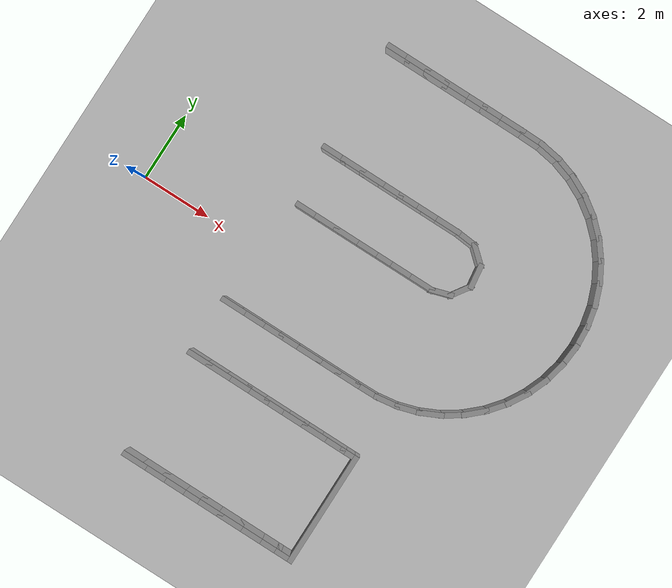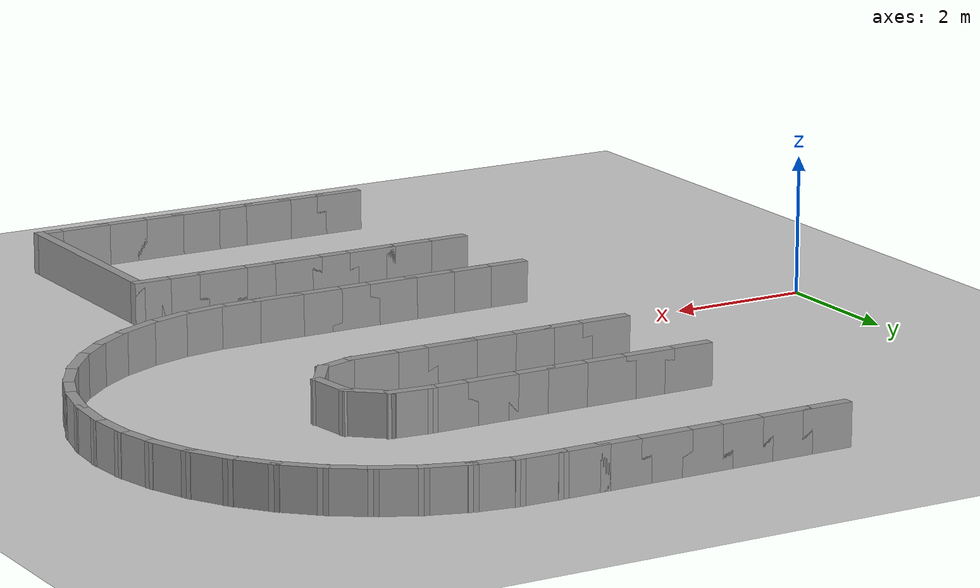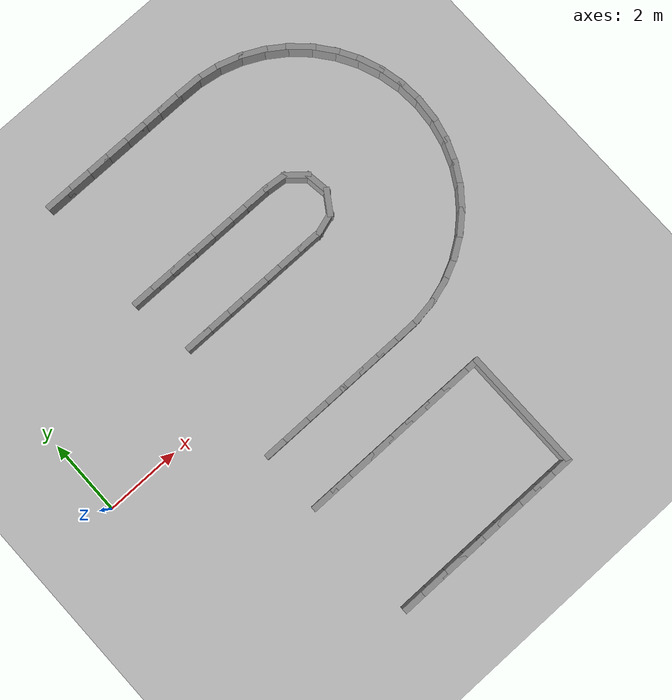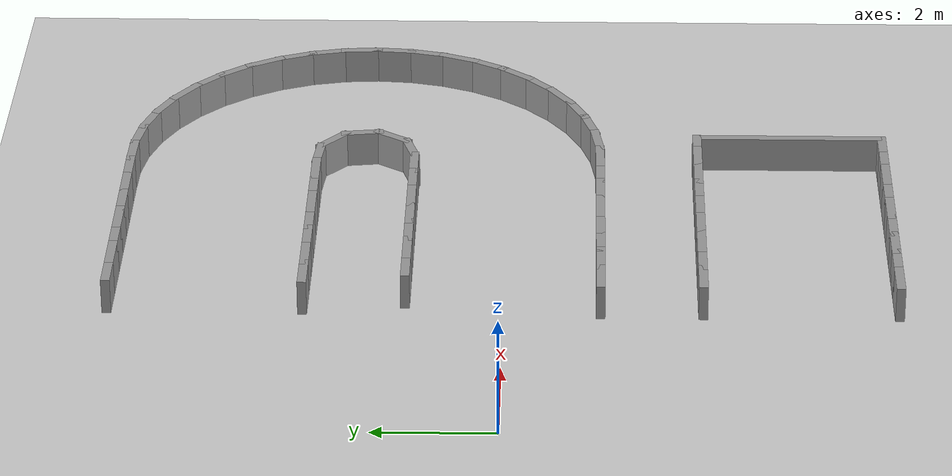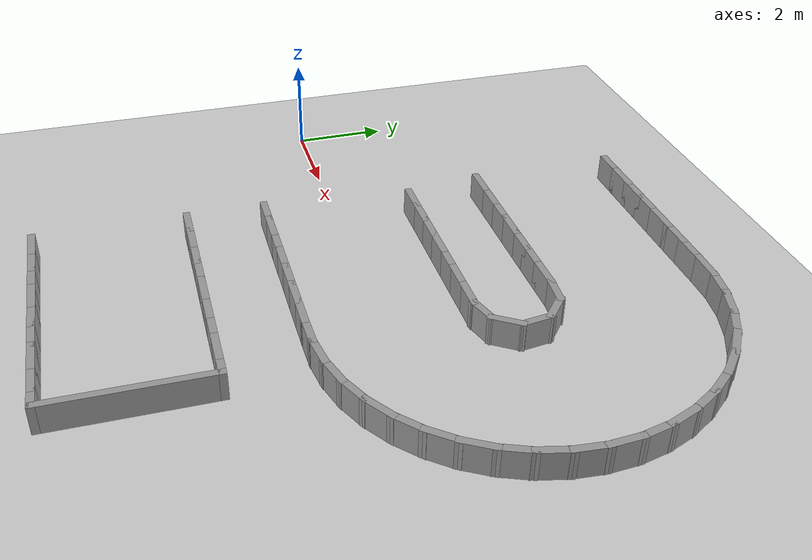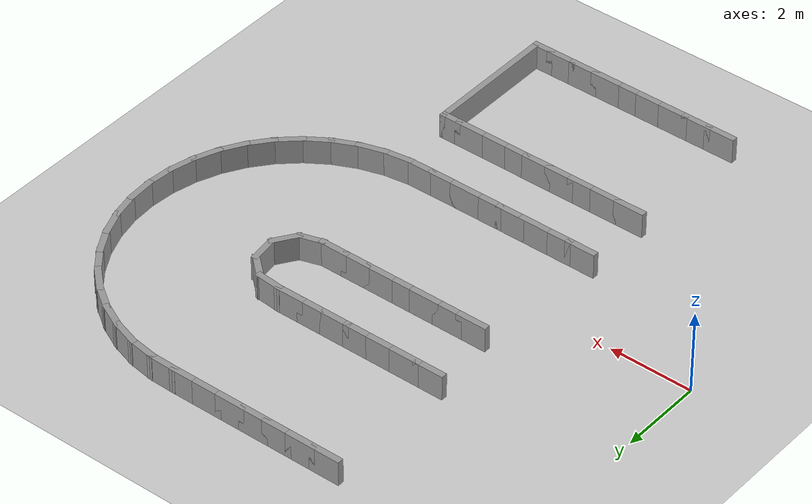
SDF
<sdf version="1.7">
 <world name="default">
  <model name="ground_plane">
   <static>1</static>
   <link name="link">
    <collision name="collision">
     <geometry><plane><normal>0 0 1</normal><size>100 100</size></plane></geometry>
     <surface><friction><ode><mu>100</mu><mu2>50</mu2></ode></friction></surface>
    </collision>
    <visual name="visual">
     <cast_shadows>0</cast_shadows>
     <geometry><plane><normal>0 0 1</normal><size>100 100</size></plane></geometry>
     <material>
      <script><uri>file://media/materials/scripts/gazebo.material</uri><name>Gazebo/Grey</name></script>
     </material>
    </visual>
   </link>
  </model>
  <model name="rand_serp_01">
   <link name="Wall_21">
    <collision name="Wall_21_Collision">
     <geometry><box><size>0.7500 0.1500 0.6000</size></box></geometry>
     <pose>0 0 0.3000 0 -0 0</pose>
    </collision>
    <visual name="Wall_21_Visual">
     <pose>0 0 0.3000 0 -0 0</pose>
     <geometry><box><size>0.7500 0.1500 0.6000</size></box></geometry>
     <material>
      <script><uri>file://media/materials/scripts/gazebo.material</uri><name>Gazebo/Grey</name></script>
      <ambient>1 1 1 1</ambient>
     </material>
    </visual>
    <pose>4.0214 6.4421 0 0 -0 0.00000</pose>
   </link>
   <link name="Wall_22">
    <collision name="Wall_22_Collision">
     <geometry><box><size>0.7500 0.1500 0.6000</size></box></geometry>
     <pose>0 0 0.3000 0 -0 0</pose>
    </collision>
    <visual name="Wall_22_Visual">
     <pose>0 0 0.3000 0 -0 0</pose>
     <geometry><box><size>0.7500 0.1500 0.6000</size></box></geometry>
     <material>
      <script><uri>file://media/materials/scripts/gazebo.material</uri><name>Gazebo/Grey</name></script>
      <ambient>1 1 1 1</ambient>
     </material>
    </visual>
    <pose>4.6214 6.4421 0 0 -0 0.00000</pose>
   </link>
   <link name="Wall_23">
    <collision name="Wall_23_Collision">
     <geometry><box><size>0.7500 0.1500 0.6000</size></box></geometry>
     <pose>0 0 0.3000 0 -0 0</pose>
    </collision>
    <visual name="Wall_23_Visual">
     <pose>0 0 0.3000 0 -0 0</pose>
     <geometry><box><size>0.7500 0.1500 0.6000</size></box></geometry>
     <material>
      <script><uri>file://media/materials/scripts/gazebo.material</uri><name>Gazebo/Grey</name></script>
      <ambient>1 1 1 1</ambient>
     </material>
    </visual>
    <pose>5.2214 6.4421 0 0 -0 0.00000</pose>
   </link>
   <link name="Wall_24">
    <collision name="Wall_24_Collision">
     <geometry><box><size>0.7500 0.1500 0.6000</size></box></geometry>
     <pose>0 0 0.3000 0 -0 0</pose>
    </collision>
    <visual name="Wall_24_Visual">
     <pose>0 0 0.3000 0 -0 0</pose>
     <geometry><box><size>0.7500 0.1500 0.6000</size></box></geometry>
     <material>
      <script><uri>file://media/materials/scripts/gazebo.material</uri><name>Gazebo/Grey</name></script>
      <ambient>1 1 1 1</ambient>
     </material>
    </visual>
    <pose>5.8214 6.4421 0 0 -0 0.00000</pose>
   </link>
   <link name="Wall_25">
    <collision name="Wall_25_Collision">
     <geometry><box><size>0.7500 0.1500 0.6000</size></box></geometry>
     <pose>0 0 0.3000 0 -0 0</pose>
    </collision>
    <visual name="Wall_25_Visual">
     <pose>0 0 0.3000 0 -0 0</pose>
     <geometry><box><size>0.7500 0.1500 0.6000</size></box></geometry>
     <material>
      <script><uri>file://media/materials/scripts/gazebo.material</uri><name>Gazebo/Grey</name></script>
      <ambient>1 1 1 1</ambient>
     </material>
    </visual>
    <pose>6.4214 6.4421 0 0 -0 0.00000</pose>
   </link>
   <link name="Wall_26">
    <collision name="Wall_26_Collision">
     <geometry><box><size>0.7500 0.1500 0.6000</size></box></geometry>
     <pose>0 0 0.3000 0 -0 0</pose>
    </collision>
    <visual name="Wall_26_Visual">
     <pose>0 0 0.3000 0 -0 0</pose>
     <geometry><box><size>0.7500 0.1500 0.6000</size></box></geometry>
     <material>
      <script><uri>file://media/materials/scripts/gazebo.material</uri><name>Gazebo/Grey</name></script>
      <ambient>1 1 1 1</ambient>
     </material>
    </visual>
    <pose>7.0214 6.4421 0 0 -0 0.00000</pose>
   </link>
   <link name="Wall_27">
    <collision name="Wall_27_Collision">
     <geometry><box><size>0.7500 0.1500 0.6000</size></box></geometry>
     <pose>0 0 0.3000 0 -0 0</pose>
    </collision>
    <visual name="Wall_27_Visual">
     <pose>0 0 0.3000 0 -0 0</pose>
     <geometry><box><size>0.7500 0.1500 0.6000</size></box></geometry>
     <material>
      <script><uri>file://media/materials/scripts/gazebo.material</uri><name>Gazebo/Grey</name></script>
      <ambient>1 1 1 1</ambient>
     </material>
    </visual>
    <pose>7.6214 6.4421 0 0 -0 0.00000</pose>
   </link>
   <link name="Wall_28">
    <collision name="Wall_28_Collision">
     <geometry><box><size>0.7498 0.1500 0.6000</size></box></geometry>
     <pose>0 0 0.3000 0 -0 0</pose>
    </collision>
    <visual name="Wall_28_Visual">
     <pose>0 0 0.3000 0 -0 0</pose>
     <geometry><box><size>0.7498 0.1500 0.6000</size></box></geometry>
     <material>
      <script><uri>file://media/materials/scripts/gazebo.material</uri><name>Gazebo/Grey</name></script>
      <ambient>1 1 1 1</ambient>
     </material>
    </visual>
    <pose>8.2212 6.4346 0 0 -0 -0.02504</pose>
   </link>
   <link name="Wall_29">
    <collision name="Wall_29_Collision">
     <geometry><box><size>0.7494 0.1500 0.6000</size></box></geometry>
     <pose>0 0 0.3000 0 -0 0</pose>
    </collision>
    <visual name="Wall_29_Visual">
     <pose>0 0 0.3000 0 -0 0</pose>
     <geometry><box><size>0.7494 0.1500 0.6000</size></box></geometry>
     <material>
      <script><uri>file://media/materials/scripts/gazebo.material</uri><name>Gazebo/Grey</name></script>
      <ambient>1 1 1 1</ambient>
     </material>
    </visual>
    <pose>8.8169 6.3794 0 0 -0 -0.15984</pose>
   </link>
   <link name="Wall_30">
    <collision name="Wall_30_Collision">
     <geometry><box><size>0.7494 0.1500 0.6000</size></box></geometry>
     <pose>0 0 0.3000 0 -0 0</pose>
    </collision>
    <visual name="Wall_30_Visual">
     <pose>0 0 0.3000 0 -0 0</pose>
     <geometry><box><size>0.7494 0.1500 0.6000</size></box></geometry>
     <material>
      <script><uri>file://media/materials/scripts/gazebo.material</uri><name>Gazebo/Grey</name></script>
      <ambient>1 1 1 1</ambient>
     </material>
    </visual>
    <pose>9.3982 6.2402 0 0 -0 -0.31012</pose>
   </link>
   <link name="Wall_31">
    <collision name="Wall_31_Collision">
     <geometry><box><size>0.7494 0.1500 0.6000</size></box></geometry>
     <pose>0 0 0.3000 0 -0 0</pose>
    </collision>
    <visual name="Wall_31_Visual">
     <pose>0 0 0.3000 0 -0 0</pose>
     <geometry><box><size>0.7494 0.1500 0.6000</size></box></geometry>
     <material>
      <script><uri>file://media/materials/scripts/gazebo.material</uri><name>Gazebo/Grey</name></script>
      <ambient>1 1 1 1</ambient>
     </material>
    </visual>
    <pose>9.9523 6.0160 0 0 -0 -0.45886</pose>
   </link>
   <link name="Wall_32">
    <collision name="Wall_32_Collision">
     <geometry><box><size>0.7494 0.1500 0.6000</size></box></geometry>
     <pose>0 0 0.3000 0 -0 0</pose>
    </collision>
    <visual name="Wall_32_Visual">
     <pose>0 0 0.3000 0 -0 0</pose>
     <geometry><box><size>0.7494 0.1500 0.6000</size></box></geometry>
     <material>
      <script><uri>file://media/materials/scripts/gazebo.material</uri><name>Gazebo/Grey</name></script>
      <ambient>1 1 1 1</ambient>
     </material>
    </visual>
    <pose>10.4670 5.7122 0 0 -0 -0.60759</pose>
   </link>
   <link name="Wall_33">
    <collision name="Wall_33_Collision">
     <geometry><box><size>0.7494 0.1500 0.6000</size></box></geometry>
     <pose>0 0 0.3000 0 -0 0</pose>
    </collision>
    <visual name="Wall_33_Visual">
     <pose>0 0 0.3000 0 -0 0</pose>
     <geometry><box><size>0.7494 0.1500 0.6000</size></box></geometry>
     <material>
      <script><uri>file://media/materials/scripts/gazebo.material</uri><name>Gazebo/Grey</name></script>
      <ambient>1 1 1 1</ambient>
     </material>
    </visual>
    <pose>10.9309 5.3353 0 0 -0 -0.75711</pose>
   </link>
   <link name="Wall_34">
    <collision name="Wall_34_Collision">
     <geometry><box><size>0.7494 0.1500 0.6000</size></box></geometry>
     <pose>0 0 0.3000 0 -0 0</pose>
    </collision>
    <visual name="Wall_34_Visual">
     <pose>0 0 0.3000 0 -0 0</pose>
     <geometry><box><size>0.7494 0.1500 0.6000</size></box></geometry>
     <material>
      <script><uri>file://media/materials/scripts/gazebo.material</uri><name>Gazebo/Grey</name></script>
      <ambient>1 1 1 1</ambient>
     </material>
    </visual>
    <pose>11.3333 4.8932 0 0 -0 -0.90764</pose>
   </link>
   <link name="Wall_35">
    <collision name="Wall_35_Collision">
     <geometry><box><size>0.7494 0.1500 0.6000</size></box></geometry>
     <pose>0 0 0.3000 0 -0 0</pose>
    </collision>
    <visual name="Wall_35_Visual">
     <pose>0 0 0.3000 0 -0 0</pose>
     <geometry><box><size>0.7494 0.1500 0.6000</size></box></geometry>
     <material>
      <script><uri>file://media/materials/scripts/gazebo.material</uri><name>Gazebo/Grey</name></script>
      <ambient>1 1 1 1</ambient>
     </material>
    </visual>
    <pose>11.6652 4.3961 0 0 -0 -1.05638</pose>
   </link>
   <link name="Wall_36">
    <collision name="Wall_36_Collision">
     <geometry><box><size>0.7494 0.1500 0.6000</size></box></geometry>
     <pose>0 0 0.3000 0 -0 0</pose>
    </collision>
    <visual name="Wall_36_Visual">
     <pose>0 0 0.3000 0 -0 0</pose>
     <geometry><box><size>0.7494 0.1500 0.6000</size></box></geometry>
     <material>
      <script><uri>file://media/materials/scripts/gazebo.material</uri><name>Gazebo/Grey</name></script>
      <ambient>1 1 1 1</ambient>
     </material>
    </visual>
    <pose>11.9198 3.8554 0 0 -0 -1.20511</pose>
   </link>
   <link name="Wall_37">
    <collision name="Wall_37_Collision">
     <geometry><box><size>0.7494 0.1500 0.6000</size></box></geometry>
     <pose>0 0 0.3000 0 -0 0</pose>
    </collision>
    <visual name="Wall_37_Visual">
     <pose>0 0 0.3000 0 -0 0</pose>
     <geometry><box><size>0.7494 0.1500 0.6000</size></box></geometry>
     <material>
      <script><uri>file://media/materials/scripts/gazebo.material</uri><name>Gazebo/Grey</name></script>
      <ambient>1 1 1 1</ambient>
     </material>
    </visual>
    <pose>12.0914 3.2828 0 0 -0 -1.35438</pose>
   </link>
   <link name="Wall_38">
    <collision name="Wall_38_Collision">
     <geometry><box><size>0.7494 0.1500 0.6000</size></box></geometry>
     <pose>0 0 0.3000 0 -0 0</pose>
    </collision>
    <visual name="Wall_38_Visual">
     <pose>0 0 0.3000 0 -0 0</pose>
     <geometry><box><size>0.7494 0.1500 0.6000</size></box></geometry>
     <material>
      <script><uri>file://media/materials/scripts/gazebo.material</uri><name>Gazebo/Grey</name></script>
      <ambient>1 1 1 1</ambient>
     </material>
    </visual>
    <pose>12.1754 2.6910 0 0 -0 -1.50517</pose>
   </link>
   <link name="Wall_39">
    <collision name="Wall_39_Collision">
     <geometry><box><size>0.7494 0.1500 0.6000</size></box></geometry>
     <pose>0 0 0.3000 0 -0 0</pose>
    </collision>
    <visual name="Wall_39_Visual">
     <pose>0 0 0.3000 0 -0 0</pose>
     <geometry><box><size>0.7494 0.1500 0.6000</size></box></geometry>
     <material>
      <script><uri>file://media/materials/scripts/gazebo.material</uri><name>Gazebo/Grey</name></script>
      <ambient>1 1 1 1</ambient>
     </material>
    </visual>
    <pose>12.1702 2.0933 0 0 -0 -1.65390</pose>
   </link>
   <link name="Wall_40">
    <collision name="Wall_40_Collision">
     <geometry><box><size>0.7494 0.1500 0.6000</size></box></geometry>
     <pose>0 0 0.3000 0 -0 0</pose>
    </collision>
    <visual name="Wall_40_Visual">
     <pose>0 0 0.3000 0 -0 0</pose>
     <geometry><box><size>0.7494 0.1500 0.6000</size></box></geometry>
     <material>
      <script><uri>file://media/materials/scripts/gazebo.material</uri><name>Gazebo/Grey</name></script>
      <ambient>1 1 1 1</ambient>
     </material>
    </visual>
    <pose>12.0764 1.5029 0 0 -0 -1.80264</pose>
   </link>
   <link name="Wall_41">
    <collision name="Wall_41_Collision">
     <geometry><box><size>0.7494 0.1500 0.6000</size></box></geometry>
     <pose>0 0 0.3000 0 -0 0</pose>
    </collision>
    <visual name="Wall_41_Visual">
     <pose>0 0 0.3000 0 -0 0</pose>
     <geometry><box><size>0.7494 0.1500 0.6000</size></box></geometry>
     <material>
      <script><uri>file://media/materials/scripts/gazebo.material</uri><name>Gazebo/Grey</name></script>
      <ambient>1 1 1 1</ambient>
     </material>
    </visual>
    <pose>11.8962 0.9330 0 0 -0 -1.95164</pose>
   </link>
   <link name="Wall_42">
    <collision name="Wall_42_Collision">
     <geometry><box><size>0.7494 0.1500 0.6000</size></box></geometry>
     <pose>0 0 0.3000 0 -0 0</pose>
    </collision>
    <visual name="Wall_42_Visual">
     <pose>0 0 0.3000 0 -0 0</pose>
     <geometry><box><size>0.7494 0.1500 0.6000</size></box></geometry>
     <material>
      <script><uri>file://media/materials/scripts/gazebo.material</uri><name>Gazebo/Grey</name></script>
      <ambient>1 1 1 1</ambient>
     </material>
    </visual>
    <pose>11.6328 0.3965 0 0 -0 -2.10269</pose>
   </link>
   <link name="Wall_43">
    <collision name="Wall_43_Collision">
     <geometry><box><size>0.7494 0.1500 0.6000</size></box></geometry>
     <pose>0 0 0.3000 0 -0 0</pose>
    </collision>
    <visual name="Wall_43_Visual">
     <pose>0 0 0.3000 0 -0 0</pose>
     <geometry><box><size>0.7494 0.1500 0.6000</size></box></geometry>
     <material>
      <script><uri>file://media/materials/scripts/gazebo.material</uri><name>Gazebo/Grey</name></script>
      <ambient>1 1 1 1</ambient>
     </material>
    </visual>
    <pose>11.2922 -0.0948 0 0 -0 -2.25142</pose>
   </link>
   <link name="Wall_44">
    <collision name="Wall_44_Collision">
     <geometry><box><size>0.7494 0.1500 0.6000</size></box></geometry>
     <pose>0 0 0.3000 0 -0 0</pose>
    </collision>
    <visual name="Wall_44_Visual">
     <pose>0 0 0.3000 0 -0 0</pose>
     <geometry><box><size>0.7494 0.1500 0.6000</size></box></geometry>
     <material>
      <script><uri>file://media/materials/scripts/gazebo.material</uri><name>Gazebo/Grey</name></script>
      <ambient>1 1 1 1</ambient>
     </material>
    </visual>
    <pose>10.8826 -0.5301 0 0 -0 -2.40016</pose>
   </link>
   <link name="Wall_45">
    <collision name="Wall_45_Collision">
     <geometry><box><size>0.7494 0.1500 0.6000</size></box></geometry>
     <pose>0 0 0.3000 0 -0 0</pose>
    </collision>
    <visual name="Wall_45_Visual">
     <pose>0 0 0.3000 0 -0 0</pose>
     <geometry><box><size>0.7494 0.1500 0.6000</size></box></geometry>
     <material>
      <script><uri>file://media/materials/scripts/gazebo.material</uri><name>Gazebo/Grey</name></script>
      <ambient>1 1 1 1</ambient>
     </material>
    </visual>
    <pose>10.4129 -0.8999 0 0 -0 -2.54891</pose>
   </link>
   <link name="Wall_46">
    <collision name="Wall_46_Collision">
     <geometry><box><size>0.7494 0.1500 0.6000</size></box></geometry>
     <pose>0 0 0.3000 0 -0 0</pose>
    </collision>
    <visual name="Wall_46_Visual">
     <pose>0 0 0.3000 0 -0 0</pose>
     <geometry><box><size>0.7494 0.1500 0.6000</size></box></geometry>
     <material>
      <script><uri>file://media/materials/scripts/gazebo.material</uri><name>Gazebo/Grey</name></script>
      <ambient>1 1 1 1</ambient>
     </material>
    </visual>
    <pose>9.8933 -1.1953 0 0 -0 -2.70021</pose>
   </link>
   <link name="Wall_47">
    <collision name="Wall_47_Collision">
     <geometry><box><size>0.7494 0.1500 0.6000</size></box></geometry>
     <pose>0 0 0.3000 0 -0 0</pose>
    </collision>
    <visual name="Wall_47_Visual">
     <pose>0 0 0.3000 0 -0 0</pose>
     <geometry><box><size>0.7494 0.1500 0.6000</size></box></geometry>
     <material>
      <script><uri>file://media/materials/scripts/gazebo.material</uri><name>Gazebo/Grey</name></script>
      <ambient>1 1 1 1</ambient>
     </material>
    </visual>
    <pose>9.3354 -1.4098 0 0 -0 -2.84894</pose>
   </link>
   <link name="Wall_48">
    <collision name="Wall_48_Collision">
     <geometry><box><size>0.7494 0.1500 0.6000</size></box></geometry>
     <pose>0 0 0.3000 0 -0 0</pose>
    </collision>
    <visual name="Wall_48_Visual">
     <pose>0 0 0.3000 0 -0 0</pose>
     <geometry><box><size>0.7494 0.1500 0.6000</size></box></geometry>
     <material>
      <script><uri>file://media/materials/scripts/gazebo.material</uri><name>Gazebo/Grey</name></script>
      <ambient>1 1 1 1</ambient>
     </material>
    </visual>
    <pose>8.7519 -1.5393 0 0 -0 -2.99768</pose>
   </link>
   <link name="Wall_49">
    <collision name="Wall_49_Collision">
     <geometry><box><size>0.7498 0.1500 0.6000</size></box></geometry>
     <pose>0 0 0.3000 0 -0 0</pose>
    </collision>
    <visual name="Wall_49_Visual">
     <pose>0 0 0.3000 0 -0 0</pose>
     <geometry><box><size>0.7498 0.1500 0.6000</size></box></geometry>
     <material>
      <script><uri>file://media/materials/scripts/gazebo.material</uri><name>Gazebo/Grey</name></script>
      <ambient>1 1 1 1</ambient>
     </material>
    </visual>
    <pose>8.1554 -1.5873 0 0 -0 -3.12465</pose>
   </link>
   <link name="Wall_50">
    <collision name="Wall_50_Collision">
     <geometry><box><size>0.7500 0.1500 0.6000</size></box></geometry>
     <pose>0 0 0.3000 0 -0 0</pose>
    </collision>
    <visual name="Wall_50_Visual">
     <pose>0 0 0.3000 0 -0 0</pose>
     <geometry><box><size>0.7500 0.1500 0.6000</size></box></geometry>
     <material>
      <script><uri>file://media/materials/scripts/gazebo.material</uri><name>Gazebo/Grey</name></script>
      <ambient>1 1 1 1</ambient>
     </material>
    </visual>
    <pose>7.5555 -1.5924 0 0 -0 3.14159</pose>
   </link>
   <link name="Wall_51">
    <collision name="Wall_51_Collision">
     <geometry><box><size>0.7500 0.1500 0.6000</size></box></geometry>
     <pose>0 0 0.3000 0 -0 0</pose>
    </collision>
    <visual name="Wall_51_Visual">
     <pose>0 0 0.3000 0 -0 0</pose>
     <geometry><box><size>0.7500 0.1500 0.6000</size></box></geometry>
     <material>
      <script><uri>file://media/materials/scripts/gazebo.material</uri><name>Gazebo/Grey</name></script>
      <ambient>1 1 1 1</ambient>
     </material>
    </visual>
    <pose>6.9555 -1.5924 0 0 -0 3.14159</pose>
   </link>
   <link name="Wall_52">
    <collision name="Wall_52_Collision">
     <geometry><box><size>0.7500 0.1500 0.6000</size></box></geometry>
     <pose>0 0 0.3000 0 -0 0</pose>
    </collision>
    <visual name="Wall_52_Visual">
     <pose>0 0 0.3000 0 -0 0</pose>
     <geometry><box><size>0.7500 0.1500 0.6000</size></box></geometry>
     <material>
      <script><uri>file://media/materials/scripts/gazebo.material</uri><name>Gazebo/Grey</name></script>
      <ambient>1 1 1 1</ambient>
     </material>
    </visual>
    <pose>6.3555 -1.5924 0 0 -0 3.14159</pose>
   </link>
   <link name="Wall_53">
    <collision name="Wall_53_Collision">
     <geometry><box><size>0.7500 0.1500 0.6000</size></box></geometry>
     <pose>0 0 0.3000 0 -0 0</pose>
    </collision>
    <visual name="Wall_53_Visual">
     <pose>0 0 0.3000 0 -0 0</pose>
     <geometry><box><size>0.7500 0.1500 0.6000</size></box></geometry>
     <material>
      <script><uri>file://media/materials/scripts/gazebo.material</uri><name>Gazebo/Grey</name></script>
      <ambient>1 1 1 1</ambient>
     </material>
    </visual>
    <pose>5.7555 -1.5924 0 0 -0 3.14159</pose>
   </link>
   <link name="Wall_54">
    <collision name="Wall_54_Collision">
     <geometry><box><size>0.7500 0.1500 0.6000</size></box></geometry>
     <pose>0 0 0.3000 0 -0 0</pose>
    </collision>
    <visual name="Wall_54_Visual">
     <pose>0 0 0.3000 0 -0 0</pose>
     <geometry><box><size>0.7500 0.1500 0.6000</size></box></geometry>
     <material>
      <script><uri>file://media/materials/scripts/gazebo.material</uri><name>Gazebo/Grey</name></script>
      <ambient>1 1 1 1</ambient>
     </material>
    </visual>
    <pose>5.1555 -1.5924 0 0 -0 3.14159</pose>
   </link>
   <link name="Wall_55">
    <collision name="Wall_55_Collision">
     <geometry><box><size>0.7500 0.1500 0.6000</size></box></geometry>
     <pose>0 0 0.3000 0 -0 0</pose>
    </collision>
    <visual name="Wall_55_Visual">
     <pose>0 0 0.3000 0 -0 0</pose>
     <geometry><box><size>0.7500 0.1500 0.6000</size></box></geometry>
     <material>
      <script><uri>file://media/materials/scripts/gazebo.material</uri><name>Gazebo/Grey</name></script>
      <ambient>1 1 1 1</ambient>
     </material>
    </visual>
    <pose>4.5555 -1.5924 0 0 -0 3.14159</pose>
   </link>
   <link name="Wall_56">
    <collision name="Wall_56_Collision">
     <geometry><box><size>0.7500 0.1500 0.6000</size></box></geometry>
     <pose>0 0 0.3000 0 -0 0</pose>
    </collision>
    <visual name="Wall_56_Visual">
     <pose>0 0 0.3000 0 -0 0</pose>
     <geometry><box><size>0.7500 0.1500 0.6000</size></box></geometry>
     <material>
      <script><uri>file://media/materials/scripts/gazebo.material</uri><name>Gazebo/Grey</name></script>
      <ambient>1 1 1 1</ambient>
     </material>
    </visual>
    <pose>3.9555 -1.5924 0 0 -0 3.14159</pose>
   </link>
   <link name="Wall_101">
    <collision name="Wall_101_Collision">
     <geometry><box><size>0.7500 0.1500 0.6000</size></box></geometry>
     <pose>0 0 0.3000 0 -0 0</pose>
    </collision>
    <visual name="Wall_101_Visual">
     <pose>0 0 0.3000 0 -0 0</pose>
     <geometry><box><size>0.7500 0.1500 0.6000</size></box></geometry>
     <material>
      <script><uri>file://media/materials/scripts/gazebo.material</uri><name>Gazebo/Grey</name></script>
      <ambient>1 1 1 1</ambient>
     </material>
    </visual>
    <pose>3.9643 -3.2573 0 0 -0 0.00000</pose>
   </link>
   <link name="Wall_102">
    <collision name="Wall_102_Collision">
     <geometry><box><size>0.7500 0.1500 0.6000</size></box></geometry>
     <pose>0 0 0.3000 0 -0 0</pose>
    </collision>
    <visual name="Wall_102_Visual">
     <pose>0 0 0.3000 0 -0 0</pose>
     <geometry><box><size>0.7500 0.1500 0.6000</size></box></geometry>
     <material>
      <script><uri>file://media/materials/scripts/gazebo.material</uri><name>Gazebo/Grey</name></script>
      <ambient>1 1 1 1</ambient>
     </material>
    </visual>
    <pose>4.5643 -3.2573 0 0 -0 0.00000</pose>
   </link>
   <link name="Wall_103">
    <collision name="Wall_103_Collision">
     <geometry><box><size>0.7500 0.1500 0.6000</size></box></geometry>
     <pose>0 0 0.3000 0 -0 0</pose>
    </collision>
    <visual name="Wall_103_Visual">
     <pose>0 0 0.3000 0 -0 0</pose>
     <geometry><box><size>0.7500 0.1500 0.6000</size></box></geometry>
     <material>
      <script><uri>file://media/materials/scripts/gazebo.material</uri><name>Gazebo/Grey</name></script>
      <ambient>1 1 1 1</ambient>
     </material>
    </visual>
    <pose>5.1643 -3.2573 0 0 -0 0.00000</pose>
   </link>
   <link name="Wall_104">
    <collision name="Wall_104_Collision">
     <geometry><box><size>0.7500 0.1500 0.6000</size></box></geometry>
     <pose>0 0 0.3000 0 -0 0</pose>
    </collision>
    <visual name="Wall_104_Visual">
     <pose>0 0 0.3000 0 -0 0</pose>
     <geometry><box><size>0.7500 0.1500 0.6000</size></box></geometry>
     <material>
      <script><uri>file://media/materials/scripts/gazebo.material</uri><name>Gazebo/Grey</name></script>
      <ambient>1 1 1 1</ambient>
     </material>
    </visual>
    <pose>5.7643 -3.2573 0 0 -0 0.00000</pose>
   </link>
   <link name="Wall_105">
    <collision name="Wall_105_Collision">
     <geometry><box><size>0.7500 0.1500 0.6000</size></box></geometry>
     <pose>0 0 0.3000 0 -0 0</pose>
    </collision>
    <visual name="Wall_105_Visual">
     <pose>0 0 0.3000 0 -0 0</pose>
     <geometry><box><size>0.7500 0.1500 0.6000</size></box></geometry>
     <material>
      <script><uri>file://media/materials/scripts/gazebo.material</uri><name>Gazebo/Grey</name></script>
      <ambient>1 1 1 1</ambient>
     </material>
    </visual>
    <pose>6.3643 -3.2573 0 0 -0 0.00000</pose>
   </link>
   <link name="Wall_106">
    <collision name="Wall_106_Collision">
     <geometry><box><size>0.7500 0.1500 0.6000</size></box></geometry>
     <pose>0 0 0.3000 0 -0 0</pose>
    </collision>
    <visual name="Wall_106_Visual">
     <pose>0 0 0.3000 0 -0 0</pose>
     <geometry><box><size>0.7500 0.1500 0.6000</size></box></geometry>
     <material>
      <script><uri>file://media/materials/scripts/gazebo.material</uri><name>Gazebo/Grey</name></script>
      <ambient>1 1 1 1</ambient>
     </material>
    </visual>
    <pose>6.9643 -3.2573 0 0 -0 0.00000</pose>
   </link>
   <link name="Wall_107">
    <collision name="Wall_107_Collision">
     <geometry><box><size>0.7500 0.1500 0.6000</size></box></geometry>
     <pose>0 0 0.3000 0 -0 0</pose>
    </collision>
    <visual name="Wall_107_Visual">
     <pose>0 0 0.3000 0 -0 0</pose>
     <geometry><box><size>0.7500 0.1500 0.6000</size></box></geometry>
     <material>
      <script><uri>file://media/materials/scripts/gazebo.material</uri><name>Gazebo/Grey</name></script>
      <ambient>1 1 1 1</ambient>
     </material>
    </visual>
    <pose>7.5643 -3.2573 0 0 -0 0.00000</pose>
   </link>
   <link name="Wall_108">
    <collision name="Wall_108_Collision">
     <geometry><box><size>0.7500 0.1500 0.6000</size></box></geometry>
     <pose>0 0 0.3000 0 -0 0</pose>
    </collision>
    <visual name="Wall_108_Visual">
     <pose>0 0 0.3000 0 -0 0</pose>
     <geometry><box><size>0.7500 0.1500 0.6000</size></box></geometry>
     <material>
      <script><uri>file://media/materials/scripts/gazebo.material</uri><name>Gazebo/Grey</name></script>
      <ambient>1 1 1 1</ambient>
     </material>
    </visual>
    <pose>8.1643 -3.2573 0 0 -0 0.00000</pose>
   </link>
   <link name="Wall_109">
    <collision name="Wall_109_Collision">
     <geometry><box><size>0.5571 0.1500 0.6000</size></box></geometry>
     <pose>0 0 0.3000 0 -0 0</pose>
    </collision>
    <visual name="Wall_109_Visual">
     <pose>0 0 0.3000 0 -0 0</pose>
     <geometry><box><size>0.5571 0.1500 0.6000</size></box></geometry>
     <material>
      <script><uri>file://media/materials/scripts/gazebo.material</uri><name>Gazebo/Grey</name></script>
      <ambient>1 1 1 1</ambient>
     </material>
    </visual>
    <pose>8.6679 -3.2573 0 0 -0 0.00000</pose>
   </link>
   <link name="Wall_131">
    <collision name="Wall_131_Collision">
     <geometry><box><size>0.7500 0.1500 0.6000</size></box></geometry>
     <pose>0 0 0.3000 0 -0 0</pose>
    </collision>
    <visual name="Wall_131_Visual">
     <pose>0 0 0.3000 0 -0 0</pose>
     <geometry><box><size>0.7500 0.1500 0.6000</size></box></geometry>
     <material>
      <script><uri>file://media/materials/scripts/gazebo.material</uri><name>Gazebo/Grey</name></script>
      <ambient>1 1 1 1</ambient>
     </material>
    </visual>
    <pose>4.0214 3.2573 0 0 -0 0.00000</pose>
   </link>
   <link name="Wall_132">
    <collision name="Wall_132_Collision">
     <geometry><box><size>0.7500 0.1500 0.6000</size></box></geometry>
     <pose>0 0 0.3000 0 -0 0</pose>
    </collision>
    <visual name="Wall_132_Visual">
     <pose>0 0 0.3000 0 -0 0</pose>
     <geometry><box><size>0.7500 0.1500 0.6000</size></box></geometry>
     <material>
      <script><uri>file://media/materials/scripts/gazebo.material</uri><name>Gazebo/Grey</name></script>
      <ambient>1 1 1 1</ambient>
     </material>
    </visual>
    <pose>4.6214 3.2573 0 0 -0 0.00000</pose>
   </link>
   <link name="Wall_133">
    <collision name="Wall_133_Collision">
     <geometry><box><size>0.7500 0.1500 0.6000</size></box></geometry>
     <pose>0 0 0.3000 0 -0 0</pose>
    </collision>
    <visual name="Wall_133_Visual">
     <pose>0 0 0.3000 0 -0 0</pose>
     <geometry><box><size>0.7500 0.1500 0.6000</size></box></geometry>
     <material>
      <script><uri>file://media/materials/scripts/gazebo.material</uri><name>Gazebo/Grey</name></script>
      <ambient>1 1 1 1</ambient>
     </material>
    </visual>
    <pose>5.2214 3.2573 0 0 -0 0.00000</pose>
   </link>
   <link name="Wall_134">
    <collision name="Wall_134_Collision">
     <geometry><box><size>0.7500 0.1500 0.6000</size></box></geometry>
     <pose>0 0 0.3000 0 -0 0</pose>
    </collision>
    <visual name="Wall_134_Visual">
     <pose>0 0 0.3000 0 -0 0</pose>
     <geometry><box><size>0.7500 0.1500 0.6000</size></box></geometry>
     <material>
      <script><uri>file://media/materials/scripts/gazebo.material</uri><name>Gazebo/Grey</name></script>
      <ambient>1 1 1 1</ambient>
     </material>
    </visual>
    <pose>5.8214 3.2573 0 0 -0 0.00000</pose>
   </link>
   <link name="Wall_135">
    <collision name="Wall_135_Collision">
     <geometry><box><size>0.7500 0.1500 0.6000</size></box></geometry>
     <pose>0 0 0.3000 0 -0 0</pose>
    </collision>
    <visual name="Wall_135_Visual">
     <pose>0 0 0.3000 0 -0 0</pose>
     <geometry><box><size>0.7500 0.1500 0.6000</size></box></geometry>
     <material>
      <script><uri>file://media/materials/scripts/gazebo.material</uri><name>Gazebo/Grey</name></script>
      <ambient>1 1 1 1</ambient>
     </material>
    </visual>
    <pose>6.4214 3.2573 0 0 -0 0.00000</pose>
   </link>
   <link name="Wall_136">
    <collision name="Wall_136_Collision">
     <geometry><box><size>0.7500 0.1500 0.6000</size></box></geometry>
     <pose>0 0 0.3000 0 -0 0</pose>
    </collision>
    <visual name="Wall_136_Visual">
     <pose>0 0 0.3000 0 -0 0</pose>
     <geometry><box><size>0.7500 0.1500 0.6000</size></box></geometry>
     <material>
      <script><uri>file://media/materials/scripts/gazebo.material</uri><name>Gazebo/Grey</name></script>
      <ambient>1 1 1 1</ambient>
     </material>
    </visual>
    <pose>7.0214 3.2573 0 0 -0 0.00000</pose>
   </link>
   <link name="Wall_137">
    <collision name="Wall_137_Collision">
     <geometry><box><size>0.7500 0.1500 0.6000</size></box></geometry>
     <pose>0 0 0.3000 0 -0 0</pose>
    </collision>
    <visual name="Wall_137_Visual">
     <pose>0 0 0.3000 0 -0 0</pose>
     <geometry><box><size>0.7500 0.1500 0.6000</size></box></geometry>
     <material>
      <script><uri>file://media/materials/scripts/gazebo.material</uri><name>Gazebo/Grey</name></script>
      <ambient>1 1 1 1</ambient>
     </material>
    </visual>
    <pose>7.6214 3.2573 0 0 -0 0.00000</pose>
   </link>
   <link name="Wall_138">
    <collision name="Wall_138_Collision">
     <geometry><box><size>0.7015 0.1500 0.6000</size></box></geometry>
     <pose>0 0 0.3000 0 -0 0</pose>
    </collision>
    <visual name="Wall_138_Visual">
     <pose>0 0 0.3000 0 -0 0</pose>
     <geometry><box><size>0.7015 0.1500 0.6000</size></box></geometry>
     <material>
      <script><uri>file://media/materials/scripts/gazebo.material</uri><name>Gazebo/Grey</name></script>
      <ambient>1 1 1 1</ambient>
     </material>
    </visual>
    <pose>8.1959 3.2309 0 0 -0 -0.09596</pose>
   </link>
   <link name="Wall_139">
    <collision name="Wall_139_Collision">
     <geometry><box><size>0.7371 0.1500 0.6000</size></box></geometry>
     <pose>0 0 0.3000 0 -0 0</pose>
    </collision>
    <visual name="Wall_139_Visual">
     <pose>0 0 0.3000 0 -0 0</pose>
     <geometry><box><size>0.7371 0.1500 0.6000</size></box></geometry>
     <material>
      <script><uri>file://media/materials/scripts/gazebo.material</uri><name>Gazebo/Grey</name></script>
      <ambient>1 1 1 1</ambient>
     </material>
    </visual>
    <pose>8.6914 3.0112 0 0 -0 -0.71874</pose>
   </link>
   <link name="Wall_140">
    <collision name="Wall_140_Collision">
     <geometry><box><size>0.7371 0.1500 0.6000</size></box></geometry>
     <pose>0 0 0.3000 0 -0 0</pose>
    </collision>
    <visual name="Wall_140_Visual">
     <pose>0 0 0.3000 0 -0 0</pose>
     <geometry><box><size>0.7371 0.1500 0.6000</size></box></geometry>
     <material>
      <script><uri>file://media/materials/scripts/gazebo.material</uri><name>Gazebo/Grey</name></script>
      <ambient>1 1 1 1</ambient>
     </material>
    </visual>
    <pose>8.9507 2.5269 0 0 -0 -1.43952</pose>
   </link>
   <link name="Wall_141">
    <collision name="Wall_141_Collision">
     <geometry><box><size>0.7370 0.1500 0.6000</size></box></geometry>
     <pose>0 0 0.3000 0 -0 0</pose>
    </collision>
    <visual name="Wall_141_Visual">
     <pose>0 0 0.3000 0 -0 0</pose>
     <geometry><box><size>0.7370 0.1500 0.6000</size></box></geometry>
     <material>
      <script><uri>file://media/materials/scripts/gazebo.material</uri><name>Gazebo/Grey</name></script>
      <ambient>1 1 1 1</ambient>
     </material>
    </visual>
    <pose>8.8260 1.9919 0 0 -0 -2.16029</pose>
   </link>
   <link name="Wall_142">
    <collision name="Wall_142_Collision">
     <geometry><box><size>0.6775 0.1500 0.6000</size></box></geometry>
     <pose>0 0 0.3000 0 -0 0</pose>
    </collision>
    <visual name="Wall_142_Visual">
     <pose>0 0 0.3000 0 -0 0</pose>
     <geometry><box><size>0.6775 0.1500 0.6000</size></box></geometry>
     <material>
      <script><uri>file://media/materials/scripts/gazebo.material</uri><name>Gazebo/Grey</name></script>
      <ambient>1 1 1 1</ambient>
     </material>
    </visual>
    <pose>8.4108 1.6702 0 0 -0 -2.84231</pose>
   </link>
   <link name="Wall_143">
    <collision name="Wall_143_Collision">
     <geometry><box><size>0.7500 0.1500 0.6000</size></box></geometry>
     <pose>0 0 0.3000 0 -0 0</pose>
    </collision>
    <visual name="Wall_143_Visual">
     <pose>0 0 0.3000 0 -0 0</pose>
     <geometry><box><size>0.7500 0.1500 0.6000</size></box></geometry>
     <material>
      <script><uri>file://media/materials/scripts/gazebo.material</uri><name>Gazebo/Grey</name></script>
      <ambient>1 1 1 1</ambient>
     </material>
    </visual>
    <pose>7.8588 1.5924 0 0 -0 3.14159</pose>
   </link>
   <link name="Wall_144">
    <collision name="Wall_144_Collision">
     <geometry><box><size>0.7500 0.1500 0.6000</size></box></geometry>
     <pose>0 0 0.3000 0 -0 0</pose>
    </collision>
    <visual name="Wall_144_Visual">
     <pose>0 0 0.3000 0 -0 0</pose>
     <geometry><box><size>0.7500 0.1500 0.6000</size></box></geometry>
     <material>
      <script><uri>file://media/materials/scripts/gazebo.material</uri><name>Gazebo/Grey</name></script>
      <ambient>1 1 1 1</ambient>
     </material>
    </visual>
    <pose>7.2588 1.5924 0 0 -0 3.14159</pose>
   </link>
   <link name="Wall_145">
    <collision name="Wall_145_Collision">
     <geometry><box><size>0.7500 0.1500 0.6000</size></box></geometry>
     <pose>0 0 0.3000 0 -0 0</pose>
    </collision>
    <visual name="Wall_145_Visual">
     <pose>0 0 0.3000 0 -0 0</pose>
     <geometry><box><size>0.7500 0.1500 0.6000</size></box></geometry>
     <material>
      <script><uri>file://media/materials/scripts/gazebo.material</uri><name>Gazebo/Grey</name></script>
      <ambient>1 1 1 1</ambient>
     </material>
    </visual>
    <pose>6.6588 1.5924 0 0 -0 3.14159</pose>
   </link>
   <link name="Wall_146">
    <collision name="Wall_146_Collision">
     <geometry><box><size>0.7500 0.1500 0.6000</size></box></geometry>
     <pose>0 0 0.3000 0 -0 0</pose>
    </collision>
    <visual name="Wall_146_Visual">
     <pose>0 0 0.3000 0 -0 0</pose>
     <geometry><box><size>0.7500 0.1500 0.6000</size></box></geometry>
     <material>
      <script><uri>file://media/materials/scripts/gazebo.material</uri><name>Gazebo/Grey</name></script>
      <ambient>1 1 1 1</ambient>
     </material>
    </visual>
    <pose>6.0588 1.5924 0 0 -0 3.14159</pose>
   </link>
   <link name="Wall_147">
    <collision name="Wall_147_Collision">
     <geometry><box><size>0.7500 0.1500 0.6000</size></box></geometry>
     <pose>0 0 0.3000 0 -0 0</pose>
    </collision>
    <visual name="Wall_147_Visual">
     <pose>0 0 0.3000 0 -0 0</pose>
     <geometry><box><size>0.7500 0.1500 0.6000</size></box></geometry>
     <material>
      <script><uri>file://media/materials/scripts/gazebo.material</uri><name>Gazebo/Grey</name></script>
      <ambient>1 1 1 1</ambient>
     </material>
    </visual>
    <pose>5.4588 1.5924 0 0 -0 3.14159</pose>
   </link>
   <link name="Wall_148">
    <collision name="Wall_148_Collision">
     <geometry><box><size>0.7500 0.1500 0.6000</size></box></geometry>
     <pose>0 0 0.3000 0 -0 0</pose>
    </collision>
    <visual name="Wall_148_Visual">
     <pose>0 0 0.3000 0 -0 0</pose>
     <geometry><box><size>0.7500 0.1500 0.6000</size></box></geometry>
     <material>
      <script><uri>file://media/materials/scripts/gazebo.material</uri><name>Gazebo/Grey</name></script>
      <ambient>1 1 1 1</ambient>
     </material>
    </visual>
    <pose>4.8588 1.5924 0 0 -0 3.14159</pose>
   </link>
   <link name="Wall_149">
    <collision name="Wall_149_Collision">
     <geometry><box><size>0.7500 0.1500 0.6000</size></box></geometry>
     <pose>0 0 0.3000 0 -0 0</pose>
    </collision>
    <visual name="Wall_149_Visual">
     <pose>0 0 0.3000 0 -0 0</pose>
     <geometry><box><size>0.7500 0.1500 0.6000</size></box></geometry>
     <material>
      <script><uri>file://media/materials/scripts/gazebo.material</uri><name>Gazebo/Grey</name></script>
      <ambient>1 1 1 1</ambient>
     </material>
    </visual>
    <pose>4.2588 1.5924 0 0 -0 3.14159</pose>
   </link>
   <link name="Wall_211">
    <collision name="Wall_211_Collision">
     <geometry><box><size>0.7500 0.1500 0.6000</size></box></geometry>
     <pose>0 0 0.3000 0 -0 0</pose>
    </collision>
    <visual name="Wall_211_Visual">
     <pose>0 0 0.3000 0 -0 0</pose>
     <geometry><box><size>0.7500 0.1500 0.6000</size></box></geometry>
     <material>
      <script><uri>file://media/materials/scripts/gazebo.material</uri><name>Gazebo/Grey</name></script>
      <ambient>1 1 1 1</ambient>
     </material>
    </visual>
    <pose>3.9643 -6.4421 0 0 -0 0.00000</pose>
   </link>
   <link name="Wall_212">
    <collision name="Wall_212_Collision">
     <geometry><box><size>0.7500 0.1500 0.6000</size></box></geometry>
     <pose>0 0 0.3000 0 -0 0</pose>
    </collision>
    <visual name="Wall_212_Visual">
     <pose>0 0 0.3000 0 -0 0</pose>
     <geometry><box><size>0.7500 0.1500 0.6000</size></box></geometry>
     <material>
      <script><uri>file://media/materials/scripts/gazebo.material</uri><name>Gazebo/Grey</name></script>
      <ambient>1 1 1 1</ambient>
     </material>
    </visual>
    <pose>4.5643 -6.4421 0 0 -0 0.00000</pose>
   </link>
   <link name="Wall_213">
    <collision name="Wall_213_Collision">
     <geometry><box><size>0.7500 0.1500 0.6000</size></box></geometry>
     <pose>0 0 0.3000 0 -0 0</pose>
    </collision>
    <visual name="Wall_213_Visual">
     <pose>0 0 0.3000 0 -0 0</pose>
     <geometry><box><size>0.7500 0.1500 0.6000</size></box></geometry>
     <material>
      <script><uri>file://media/materials/scripts/gazebo.material</uri><name>Gazebo/Grey</name></script>
      <ambient>1 1 1 1</ambient>
     </material>
    </visual>
    <pose>5.1643 -6.4421 0 0 -0 0.00000</pose>
   </link>
   <link name="Wall_214">
    <collision name="Wall_214_Collision">
     <geometry><box><size>0.7500 0.1500 0.6000</size></box></geometry>
     <pose>0 0 0.3000 0 -0 0</pose>
    </collision>
    <visual name="Wall_214_Visual">
     <pose>0 0 0.3000 0 -0 0</pose>
     <geometry><box><size>0.7500 0.1500 0.6000</size></box></geometry>
     <material>
      <script><uri>file://media/materials/scripts/gazebo.material</uri><name>Gazebo/Grey</name></script>
      <ambient>1 1 1 1</ambient>
     </material>
    </visual>
    <pose>5.7643 -6.4421 0 0 -0 0.00000</pose>
   </link>
   <link name="Wall_215">
    <collision name="Wall_215_Collision">
     <geometry><box><size>0.7500 0.1500 0.6000</size></box></geometry>
     <pose>0 0 0.3000 0 -0 0</pose>
    </collision>
    <visual name="Wall_215_Visual">
     <pose>0 0 0.3000 0 -0 0</pose>
     <geometry><box><size>0.7500 0.1500 0.6000</size></box></geometry>
     <material>
      <script><uri>file://media/materials/scripts/gazebo.material</uri><name>Gazebo/Grey</name></script>
      <ambient>1 1 1 1</ambient>
     </material>
    </visual>
    <pose>6.3643 -6.4421 0 0 -0 0.00000</pose>
   </link>
   <link name="Wall_216">
    <collision name="Wall_216_Collision">
     <geometry><box><size>0.7500 0.1500 0.6000</size></box></geometry>
     <pose>0 0 0.3000 0 -0 0</pose>
    </collision>
    <visual name="Wall_216_Visual">
     <pose>0 0 0.3000 0 -0 0</pose>
     <geometry><box><size>0.7500 0.1500 0.6000</size></box></geometry>
     <material>
      <script><uri>file://media/materials/scripts/gazebo.material</uri><name>Gazebo/Grey</name></script>
      <ambient>1 1 1 1</ambient>
     </material>
    </visual>
    <pose>6.9643 -6.4421 0 0 -0 0.00000</pose>
   </link>
   <link name="Wall_217">
    <collision name="Wall_217_Collision">
     <geometry><box><size>0.7500 0.1500 0.6000</size></box></geometry>
     <pose>0 0 0.3000 0 -0 0</pose>
    </collision>
    <visual name="Wall_217_Visual">
     <pose>0 0 0.3000 0 -0 0</pose>
     <geometry><box><size>0.7500 0.1500 0.6000</size></box></geometry>
     <material>
      <script><uri>file://media/materials/scripts/gazebo.material</uri><name>Gazebo/Grey</name></script>
      <ambient>1 1 1 1</ambient>
     </material>
    </visual>
    <pose>7.5643 -6.4421 0 0 -0 0.00000</pose>
   </link>
   <link name="Wall_218">
    <collision name="Wall_218_Collision">
     <geometry><box><size>0.7500 0.1500 0.6000</size></box></geometry>
     <pose>0 0 0.3000 0 -0 0</pose>
    </collision>
    <visual name="Wall_218_Visual">
     <pose>0 0 0.3000 0 -0 0</pose>
     <geometry><box><size>0.7500 0.1500 0.6000</size></box></geometry>
     <material>
      <script><uri>file://media/materials/scripts/gazebo.material</uri><name>Gazebo/Grey</name></script>
      <ambient>1 1 1 1</ambient>
     </material>
    </visual>
    <pose>8.1643 -6.4421 0 0 -0 0.00000</pose>
   </link>
   <link name="Wall_219">
    <collision name="Wall_219_Collision">
     <geometry><box><size>0.5571 0.1500 0.6000</size></box></geometry>
     <pose>0 0 0.3000 0 -0 0</pose>
    </collision>
    <visual name="Wall_219_Visual">
     <pose>0 0 0.3000 0 -0 0</pose>
     <geometry><box><size>0.5571 0.1500 0.6000</size></box></geometry>
     <material>
      <script><uri>file://media/materials/scripts/gazebo.material</uri><name>Gazebo/Grey</name></script>
      <ambient>1 1 1 1</ambient>
     </material>
    </visual>
    <pose>8.6679 -6.4421 0 0 -0 0.00000</pose>
   </link>
   <link name="Wall_221">
    <collision name="Wall_221_Collision">
     <geometry><box><size>3.3348 0.1500 0.6000</size></box></geometry>
     <pose>0 0 0.3000 0 -0 0</pose>
    </collision>
    <visual name="Wall_221_Visual">
     <pose>0 0 0.3000 0 -0 0</pose>
     <geometry><box><size>3.3348 0.1500 0.6000</size></box></geometry>
     <material>
      <script><uri>file://media/materials/scripts/gazebo.material</uri><name>Gazebo/Grey</name></script>
      <ambient>1 1 1 1</ambient>
     </material>
    </visual>
    <pose>8.8714 -4.8497 0 0 -0 -1.57080</pose>
   </link>
   <static>1</static>
  </model>
 </world>
</sdf>
